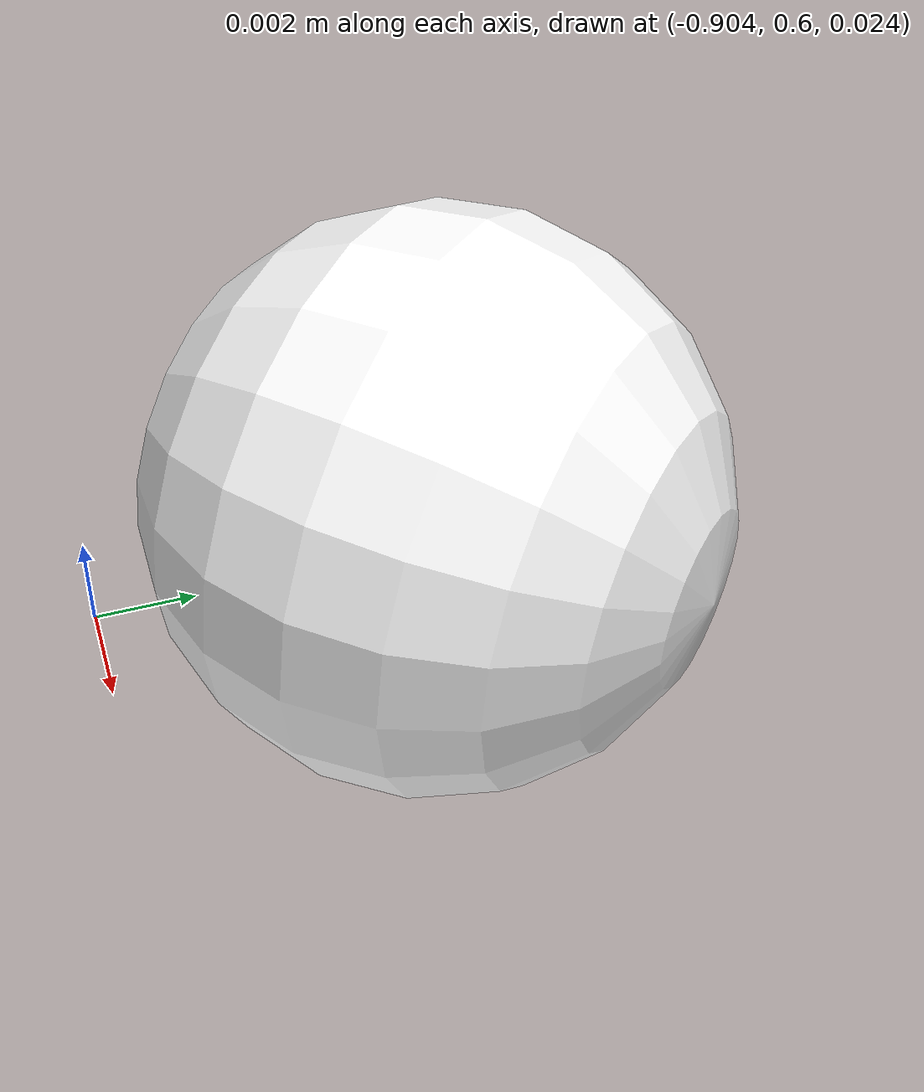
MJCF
<mujoco model="ur5">
    <compiler angle="radian" meshdir="meshes" />

    <option gravity="0 0 0" cone="elliptic" timestep="0.02" />

    <size njmax="500" nconmax="100" />

    <visual>
        <map znear="0.001" />
    </visual>

    <default>
        <light castshadow="false" diffuse="1 1 1" />
        <joint frictionloss="1" damping="1" />
        <camera fovy="60" />
        <motor gear="0.8"/>
        <velocity kv="10"/>
        <position kp="5"/>
    </default>

    <asset>
        <material name="Light" specular="0" shininess="0.6" reflectance="0.9" rgba="1 1 1 1" emission="0.7" />
    </asset>

    <worldbody>
        <body pos="-0.16 0.90 0.02" euler="4.71238898 0 3.14159265">
            <body euler="0 -0.82 0">
                <camera name="workbench_camera" euler="0.25 0 0" fovy="43" />
            </body>
        </body>
        <body pos="-1 1.52 0.64" euler="4.71238898 0 3.14159265">
            <body euler="-0.23 0 0">
                <camera name="upper_camera" euler="0 0.09 0" fovy="41" />
            </body>
        </body>

        <light directional="true" pos="-0.5 0.5 3" dir="0 0 -1" />
        <light directional="false" pos="-0.5 0.5 1.5" dir="0 -1 0" />

        <body name="base_link" pos="-0.175 0.175 0" quat="0.3826834324 0 0 0.9238795325" >
            <inertial pos="0 0 0" quat="0.5 0.5 -0.5 0.5" mass="4" diaginertia="0.0072 0.00443333 0.00443333" />

            <body name="shoulder_link" pos="0 0 0.089159">
                <inertial pos="0 0 0" mass="3.7" diaginertia="0.0102675 0.0102675 0.00666" />
                <joint name="joint1" pos="0 0 0" axis="0 0 1" />

                <body name="upper_arm_link" pos="0 0.13585 0" quat="0.707107 0 0.707107 0">
                    <inertial pos="0 0 0.28" mass="8.393" diaginertia="0.226891 0.226891 0.0151074" />
                    <joint name="joint2" pos="0 0 0" axis="0 1 0" />

                    <body name="forearm_link" pos="0 -0.1197 0.425">
                        <inertial pos="0 0 0.25" mass="2.275" diaginertia="0.0494433 0.0494433 0.004095" />

                        <!--camera name="forearm_camera" pos="0 0.1 0.07" euler="3.14159265 0 1.570796" /-->

                        <joint name="joint3" pos="0 0 0" axis="0 1 0" />

                        <body name="wrist1_link" pos="0 0 0.39225" quat="0.707107 0 0.707107 0">
                            <inertial pos="0 0 0" quat="0.5 0.5 -0.5 0.5" mass="1.219" diaginertia="0.21942 0.111173 0.111173" />
                            <joint name="joint4" pos="0 0 0" axis="0 1 0" />

                            <body name="wrist2_link" pos="0 0.093 0">
                                <inertial pos="0 0 0" quat="0.5 0.5 -0.5 0.5" mass="1.219" diaginertia="0.21942 0.111173 0.111173" />
                                <joint name="joint5" pos="0 0 0" axis="0 0 1" />

                                <body name="wrist3_link" pos="0 0 0.09465" quat="0.707107 0 -0.707107 0" >
                                    <inertial pos="0 0 0" quat="0.5 0.5 -0.5 0.5" mass="0.1879" diaginertia="0.033822 0.0171365 0.0171365" />
                                    <joint name="joint6" pos="0 0 0" axis="0 1 0" />

                                    <body name="ee_link" pos="0 0.0823 0" quat="0.707107 -0.707107 0 0">
                                        <inertial pos="0 0.0823 0" quat="0.707107 -0.707107 0 0" mass="0" diaginertia="0 0 0" />
                                        <geom name="light_2" type="sphere" size="0.005" pos="-0.035 0 0.0166" material="Light" />
                                    </body>
                                </body>
                            </body>
                        </body>
                    </body>
                </body>
            </body>
        </body>
    </worldbody>
</mujoco>
